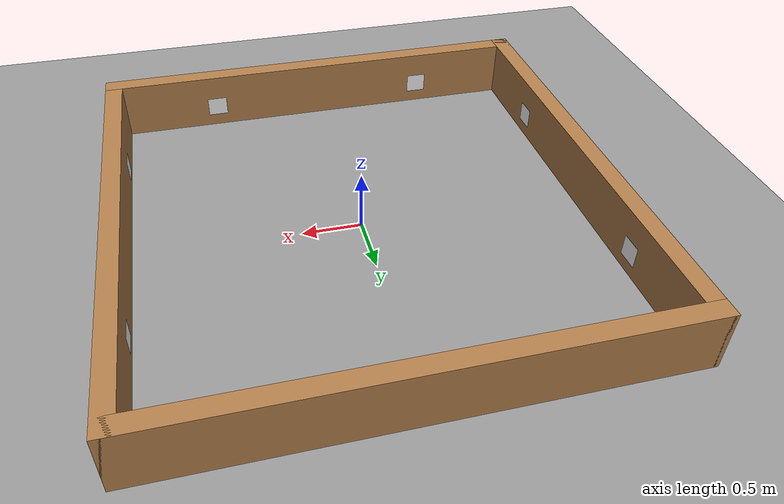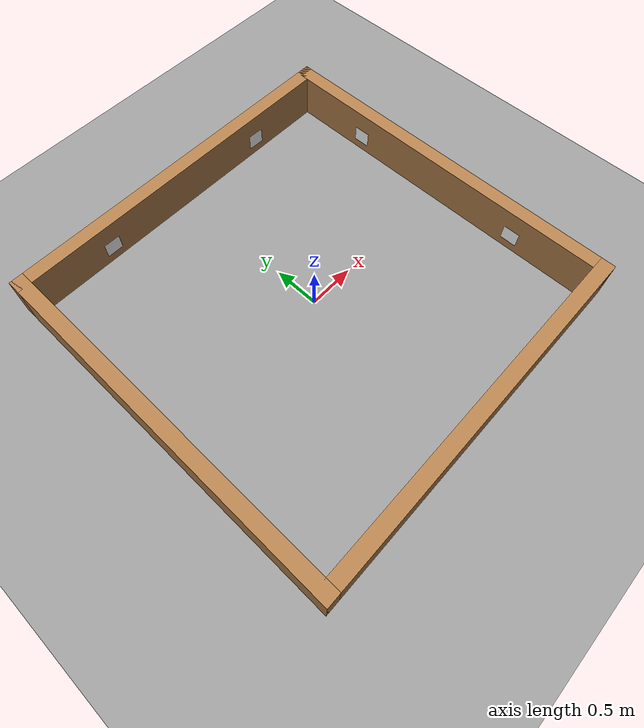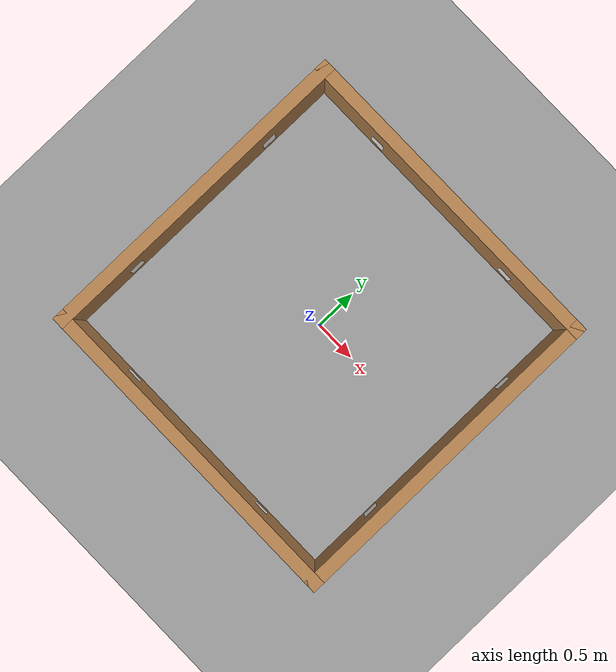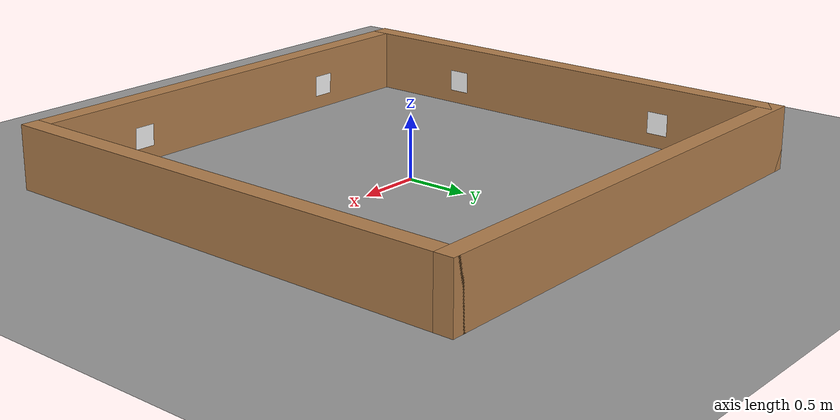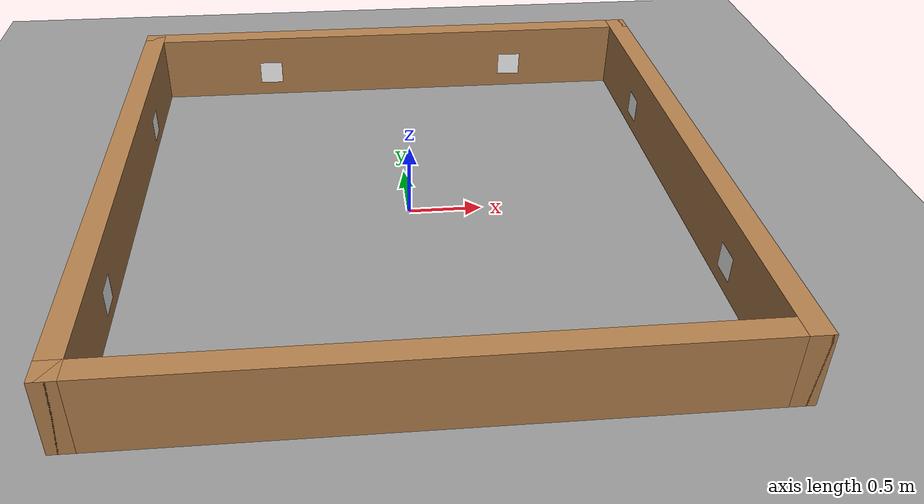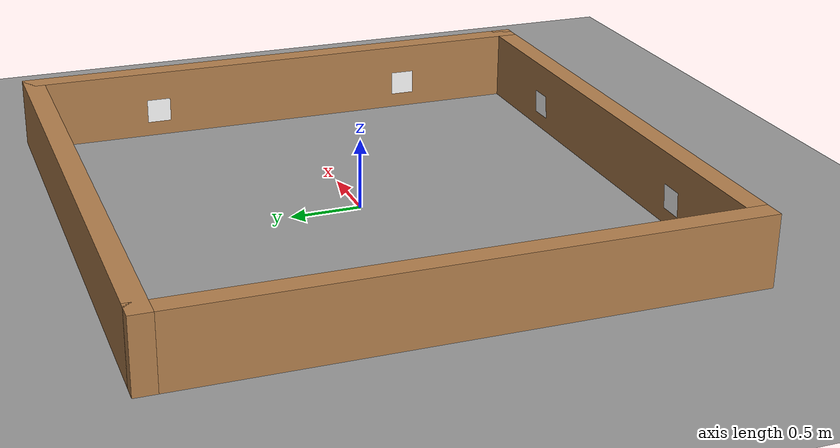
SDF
<sdf version="1.6">
 <world name="default">
  <light name="sun" type="directional">
   <pose>0 0 10 0 -0 0</pose>
   <diffuse>0.8 0.8 0.8 1</diffuse>
   <specular>0.2 0.2 0.2 1</specular>
   <attenuation>
    <range>1000</range>
    <constant>0.9</constant>
    <linear>0.01</linear>
    <quadratic>0.001</quadratic>
   </attenuation>
   <direction>0.5 0.1 -0.9</direction>
  </light>
  <scene><ambient>0.4 0.4 0.4 1</ambient><background>0.7 0.7 0.7 1</background><shadows>1</shadows></scene>
  <physics name="default_physics" default="0" type="ode">
   <max_step_size>0.01</max_step_size>
   <real_time_factor>1</real_time_factor>
   <real_time_update_rate>100</real_time_update_rate>
  </physics>
  <model name="ground_plane_0">
   <static>1</static>
   <link name="link">
    <collision name="collision">
     <geometry><plane><normal>0 0 1</normal><size>100 100</size></plane></geometry>
     <surface><friction><ode><mu>100</mu><mu2>50</mu2></ode></friction></surface>
    </collision>
    <visual name="visual">
     <cast_shadows>0</cast_shadows>
     <geometry><plane><normal>0 0 1</normal><size>100 100</size></plane></geometry>
     <material>
      <script><uri>file://media/materials/scripts/gazebo.material</uri><name>Gazebo/Grey</name></script>
     </material>
    </visual>
    <velocity_decay><linear>0</linear><angular>0</angular></velocity_decay>
   </link>
   <pose>0.497681 0 0 0 -0 0</pose>
  </model>
  <gravity>0 0 -9.8</gravity>
  <magnetic_field>6e-06 2.3e-05 -4.2e-05</magnetic_field>
  <atmosphere type="adiabatic"/>
  <spherical_coordinates>
   <surface_model>EARTH_WGS84</surface_model>
   <latitude_deg>0</latitude_deg>
   <longitude_deg>0</longitude_deg>
   <elevation>0</elevation>
   <heading_deg>0</heading_deg>
  </spherical_coordinates>
  <model name="turtlebot3_square">
   <link name="Wall_0">
    <collision name="Wall_0_Collision">
     <geometry><box><size>4 0.15 0.5</size></box></geometry>
     <pose>0 0 0.25 0 -0 0</pose>
    </collision>
    <visual name="Wall_0_Visual">
     <pose>0 0 0.25 0 -0 0</pose>
     <geometry><box><size>4 0.15 0.5</size></box></geometry>
     <material>
      <script><uri>file://media/materials/scripts/gazebo.material</uri><name>Gazebo/Wood</name></script>
      <ambient>1 1 1 1</ambient>
     </material>
    </visual>
    <pose>0 1.925 0 0 -0 0</pose>
   </link>
   <link name="Wall_2">
    <collision name="Wall_2_Collision">
     <geometry><box><size>4 0.15 0.5</size></box></geometry>
     <pose>0 0 0.25 0 -0 0</pose>
    </collision>
    <visual name="Wall_2_Visual">
     <pose>0 0 0.25 0 -0 0</pose>
     <geometry><box><size>4 0.15 0.5</size></box></geometry>
     <material>
      <script><uri>file://media/materials/scripts/gazebo.material</uri><name>Gazebo/Wood</name></script>
      <ambient>1 1 1 1</ambient>
     </material>
    </visual>
    <pose>-1.925 0 0 0 0 -1.5708</pose>
   </link>
   <link name="Wall_3">
    <collision name="Wall_3_Collision">
     <geometry><box><size>4 0.15 0.5</size></box></geometry>
     <pose>0 0 0.25 0 -0 0</pose>
    </collision>
    <visual name="Wall_3_Visual">
     <pose>0 0 0.25 0 -0 0</pose>
     <geometry><box><size>4 0.15 0.5</size></box></geometry>
     <material>
      <script><uri>file://media/materials/scripts/gazebo.material</uri><name>Gazebo/Wood</name></script>
      <ambient>1 1 1 1</ambient>
     </material>
    </visual>
    <pose>0 -1.925 0 0 -0 0</pose>
   </link>
   <link name="Wall_4">
    <collision name="Wall_4_Collision">
     <geometry><box><size>4 0.15 0.5</size></box></geometry>
     <pose>0 0 0.25 0 -0 0</pose>
    </collision>
    <visual name="Wall_4_Visual">
     <pose>0 0 0.25 0 -0 0</pose>
     <geometry><box><size>4 0.15 0.5</size></box></geometry>
     <material>
      <script><uri>file://media/materials/scripts/gazebo.material</uri><name>Gazebo/Wood</name></script>
      <ambient>1 1 1 1</ambient>
     </material>
    </visual>
    <pose>1.925 0 0 0 -0 1.5708</pose>
   </link>
   <static>1</static>
  </model>
  <model name="aruco_visual_marker_0">
   <link name="marker">
    <visual name="visual">
     <geometry><box><size>0.1778 0.1778 1e-05</size></box></geometry>
     <material>
      <script>
       <uri>model://aruco_visual_marker_0/materials/scripts</uri>
       <uri>model://aruco_visual_marker_0/materials/textures</uri>
       <name>ArucoVisualMarker0/Marker</name>
      </script>
      <ambient>1 1 1 1</ambient>
      <diffuse>1 1 1 1</diffuse>
      <specular>0 0 0 1</specular>
      <emissive>1 1 1 0</emissive>
      <shader type="vertex"><normal_map>__default__</normal_map></shader>
     </material>
    </visual>
    <collision name="collision"><geometry><box><size>0.1778 0.1778 1e-05</size></box></geometry></collision>
   </link>
   <link name="marker_pad">
    <pose frame="marker">0 0 -1e-05 0 -0 0</pose>
    <visual name="visual">
     <geometry><box><size>0.1778 0.1778 1e-05</size></box></geometry>
     <material>
      <lighting>1</lighting>
      <script><uri>file://media/materials/scripts/gazebo.material</uri><name>Gazebo/White</name></script>
      <ambient>0.3 0.3 0.3 1</ambient>
      <diffuse>0.7 0.7 0.7 1</diffuse>
      <specular>0.01 0.01 0.01 1</specular>
      <emissive>1 1 1 0</emissive>
      <shader type="vertex"><normal_map>__default__</normal_map></shader>
     </material>
    </visual>
    <collision name="collision"><geometry><box><size>0.1778 0.1778 1e-05</size></box></geometry></collision>
   </link>
   <joint name="marker_JOINT_marker_pad" type="revolute">
    <parent>marker</parent>
    <child>marker_pad</child>
    <axis>
     <xyz>0 0 1</xyz>
     <limit><upper>0</upper><lower>0</lower></limit>
     <use_parent_model_frame>0</use_parent_model_frame>
     <dynamics><spring_reference>0</spring_reference><spring_stiffness>0</spring_stiffness></dynamics>
    </axis>
   </joint>
   <static>1</static>
   <pose>1.84 -1 0.2 3.14159 -1.57079 3.14159</pose>
  </model>
  <model name="aruco_visual_marker_1">
   <link name="marker">
    <visual name="visual">
     <geometry><box><size>0.1778 0.1778 1e-05</size></box></geometry>
     <material>
      <script>
       <uri>model://aruco_visual_marker_1/materials/scripts</uri>
       <uri>model://aruco_visual_marker_1/materials/textures</uri>
       <name>ArucoVisualMarker1/Marker</name>
      </script>
      <ambient>1 1 1 1</ambient>
      <diffuse>1 1 1 1</diffuse>
      <specular>0 0 0 1</specular>
      <emissive>1 1 1 0</emissive>
      <shader type="vertex"><normal_map>__default__</normal_map></shader>
     </material>
    </visual>
    <collision name="collision"><geometry><box><size>0.1778 0.1778 1e-05</size></box></geometry></collision>
   </link>
   <link name="marker_pad">
    <pose frame="marker">0 0 -1e-05 0 -0 0</pose>
    <visual name="visual">
     <geometry><box><size>0.1778 0.1778 1e-05</size></box></geometry>
     <material>
      <lighting>1</lighting>
      <script><uri>file://media/materials/scripts/gazebo.material</uri><name>Gazebo/White</name></script>
      <ambient>0.3 0.3 0.3 1</ambient>
      <diffuse>0.7 0.7 0.7 1</diffuse>
      <specular>0.01 0.01 0.01 1</specular>
      <emissive>1 1 1 0</emissive>
      <shader type="vertex"><normal_map>__default__</normal_map></shader>
     </material>
    </visual>
    <collision name="collision"><geometry><box><size>0.1778 0.1778 1e-05</size></box></geometry></collision>
   </link>
   <joint name="marker_JOINT_marker_pad" type="revolute">
    <parent>marker</parent>
    <child>marker_pad</child>
    <axis>
     <xyz>0 0 1</xyz>
     <limit><upper>0</upper><lower>0</lower></limit>
     <use_parent_model_frame>0</use_parent_model_frame>
     <dynamics><spring_reference>0</spring_reference><spring_stiffness>0</spring_stiffness></dynamics>
    </axis>
   </joint>
   <static>1</static>
   <pose>1.84 1 0.2 3.14159 -1.57079 3.14159</pose>
  </model>
  <model name="aruco_visual_marker_2">
   <link name="marker">
    <visual name="visual">
     <geometry><box><size>0.1778 0.1778 1e-05</size></box></geometry>
     <material>
      <script>
       <uri>model://aruco_visual_marker_2/materials/scripts</uri>
       <uri>model://aruco_visual_marker_2/materials/textures</uri>
       <name>ArucoVisualMarker2/Marker</name>
      </script>
      <ambient>1 1 1 1</ambient>
      <diffuse>1 1 1 1</diffuse>
      <specular>0 0 0 1</specular>
      <emissive>1 1 1 0</emissive>
      <shader type="vertex"><normal_map>__default__</normal_map></shader>
     </material>
    </visual>
    <collision name="collision"><geometry><box><size>0.1778 0.1778 1e-05</size></box></geometry></collision>
   </link>
   <link name="marker_pad">
    <pose frame="marker">0 0 -1e-05 0 -0 0</pose>
    <visual name="visual">
     <geometry><box><size>0.1778 0.1778 1e-05</size></box></geometry>
     <material>
      <lighting>1</lighting>
      <script><uri>file://media/materials/scripts/gazebo.material</uri><name>Gazebo/White</name></script>
      <ambient>0.3 0.3 0.3 1</ambient>
      <diffuse>0.7 0.7 0.7 1</diffuse>
      <specular>0.01 0.01 0.01 1</specular>
      <emissive>1 1 1 0</emissive>
      <shader type="vertex"><normal_map>__default__</normal_map></shader>
     </material>
    </visual>
    <collision name="collision"><geometry><box><size>0.1778 0.1778 1e-05</size></box></geometry></collision>
   </link>
   <joint name="marker_JOINT_marker_pad" type="revolute">
    <parent>marker</parent>
    <child>marker_pad</child>
    <axis>
     <xyz>0 0 1</xyz>
     <limit><upper>0</upper><lower>0</lower></limit>
     <use_parent_model_frame>0</use_parent_model_frame>
     <dynamics><spring_reference>0</spring_reference><spring_stiffness>0</spring_stiffness></dynamics>
    </axis>
   </joint>
   <static>1</static>
   <pose>1 1.84 0.2 1.55523 -1.57079 -0.015565</pose>
  </model>
  <model name="aruco_visual_marker_3">
   <link name="marker">
    <visual name="visual">
     <geometry><box><size>0.1778 0.1778 1e-05</size></box></geometry>
     <material>
      <script>
       <uri>model://aruco_visual_marker_3/materials/scripts</uri>
       <uri>model://aruco_visual_marker_3/materials/textures</uri>
       <name>ArucoVisualMarker3/Marker</name>
      </script>
      <ambient>1 1 1 1</ambient>
      <diffuse>1 1 1 1</diffuse>
      <specular>0 0 0 1</specular>
      <emissive>1 1 1 0</emissive>
      <shader type="vertex"><normal_map>__default__</normal_map></shader>
     </material>
    </visual>
    <collision name="collision"><geometry><box><size>0.1778 0.1778 1e-05</size></box></geometry></collision>
   </link>
   <link name="marker_pad">
    <pose frame="marker">0 0 -1e-05 0 -0 0</pose>
    <visual name="visual">
     <geometry><box><size>0.1778 0.1778 1e-05</size></box></geometry>
     <material>
      <lighting>1</lighting>
      <script><uri>file://media/materials/scripts/gazebo.material</uri><name>Gazebo/White</name></script>
      <ambient>0.3 0.3 0.3 1</ambient>
      <diffuse>0.7 0.7 0.7 1</diffuse>
      <specular>0.01 0.01 0.01 1</specular>
      <emissive>1 1 1 0</emissive>
      <shader type="vertex"><normal_map>__default__</normal_map></shader>
     </material>
    </visual>
    <collision name="collision"><geometry><box><size>0.1778 0.1778 1e-05</size></box></geometry></collision>
   </link>
   <joint name="marker_JOINT_marker_pad" type="revolute">
    <parent>marker</parent>
    <child>marker_pad</child>
    <axis>
     <xyz>0 0 1</xyz>
     <limit><upper>0</upper><lower>0</lower></limit>
     <use_parent_model_frame>0</use_parent_model_frame>
     <dynamics><spring_reference>0</spring_reference><spring_stiffness>0</spring_stiffness></dynamics>
    </axis>
   </joint>
   <static>1</static>
   <pose>-1 1.84 0.2 1.93215 -1.56284 -0.363899</pose>
  </model>
  <model name="aruco_visual_marker_4">
   <link name="marker">
    <visual name="visual">
     <geometry><box><size>0.1778 0.1778 1e-05</size></box></geometry>
     <material>
      <script>
       <uri>model://aruco_visual_marker_4/materials/scripts</uri>
       <uri>model://aruco_visual_marker_4/materials/textures</uri>
       <name>ArucoVisualMarker4/Marker</name>
      </script>
      <ambient>1 1 1 1</ambient>
      <diffuse>1 1 1 1</diffuse>
      <specular>0 0 0 1</specular>
      <emissive>1 1 1 0</emissive>
      <shader type="vertex"><normal_map>__default__</normal_map></shader>
     </material>
    </visual>
    <collision name="collision"><geometry><box><size>0.1778 0.1778 1e-05</size></box></geometry></collision>
   </link>
   <link name="marker_pad">
    <pose frame="marker">0 0 -1e-05 0 -0 0</pose>
    <visual name="visual">
     <geometry><box><size>0.1778 0.1778 1e-05</size></box></geometry>
     <material>
      <lighting>1</lighting>
      <script><uri>file://media/materials/scripts/gazebo.material</uri><name>Gazebo/White</name></script>
      <ambient>0.3 0.3 0.3 1</ambient>
      <diffuse>0.7 0.7 0.7 1</diffuse>
      <specular>0.01 0.01 0.01 1</specular>
      <emissive>1 1 1 0</emissive>
      <shader type="vertex"><normal_map>__default__</normal_map></shader>
     </material>
    </visual>
    <collision name="collision"><geometry><box><size>0.1778 0.1778 1e-05</size></box></geometry></collision>
   </link>
   <joint name="marker_JOINT_marker_pad" type="revolute">
    <parent>marker</parent>
    <child>marker_pad</child>
    <axis>
     <xyz>0 0 1</xyz>
     <limit><upper>0</upper><lower>0</lower></limit>
     <use_parent_model_frame>0</use_parent_model_frame>
     <dynamics><spring_reference>0</spring_reference><spring_stiffness>0</spring_stiffness></dynamics>
    </axis>
   </joint>
   <static>1</static>
   <pose>-1.84 1 0.2 0.000102 -1.56335 -3.13313</pose>
  </model>
  <model name="aruco_visual_marker_5">
   <link name="marker">
    <visual name="visual">
     <geometry><box><size>0.1778 0.1778 1e-05</size></box></geometry>
     <material>
      <script>
       <uri>model://aruco_visual_marker_5/materials/scripts</uri>
       <uri>model://aruco_visual_marker_5/materials/textures</uri>
       <name>ArucoVisualMarker5/Marker</name>
      </script>
      <ambient>1 1 1 1</ambient>
      <diffuse>1 1 1 1</diffuse>
      <specular>0 0 0 1</specular>
      <emissive>1 1 1 0</emissive>
      <shader type="vertex"><normal_map>__default__</normal_map></shader>
     </material>
    </visual>
    <collision name="collision"><geometry><box><size>0.1778 0.1778 1e-05</size></box></geometry></collision>
   </link>
   <link name="marker_pad">
    <pose frame="marker">0 0 -1e-05 0 -0 0</pose>
    <visual name="visual">
     <geometry><box><size>0.1778 0.1778 1e-05</size></box></geometry>
     <material>
      <lighting>1</lighting>
      <script><uri>file://media/materials/scripts/gazebo.material</uri><name>Gazebo/White</name></script>
      <ambient>0.3 0.3 0.3 1</ambient>
      <diffuse>0.7 0.7 0.7 1</diffuse>
      <specular>0.01 0.01 0.01 1</specular>
      <emissive>1 1 1 0</emissive>
      <shader type="vertex"><normal_map>__default__</normal_map></shader>
     </material>
    </visual>
    <collision name="collision"><geometry><box><size>0.1778 0.1778 1e-05</size></box></geometry></collision>
   </link>
   <joint name="marker_JOINT_marker_pad" type="revolute">
    <parent>marker</parent>
    <child>marker_pad</child>
    <axis>
     <xyz>0 0 1</xyz>
     <limit><upper>0</upper><lower>0</lower></limit>
     <use_parent_model_frame>0</use_parent_model_frame>
     <dynamics><spring_reference>0</spring_reference><spring_stiffness>0</spring_stiffness></dynamics>
    </axis>
   </joint>
   <static>1</static>
   <pose>-1.84 -1 0.2 -3.14151 -1.56466 0.009305</pose>
  </model>
  <model name="aruco_visual_marker_6">
   <link name="marker">
    <visual name="visual">
     <geometry><box><size>0.1778 0.1778 1e-05</size></box></geometry>
     <material>
      <script>
       <uri>model://aruco_visual_marker_6/materials/scripts</uri>
       <uri>model://aruco_visual_marker_6/materials/textures</uri>
       <name>ArucoVisualMarker6/Marker</name>
      </script>
      <ambient>1 1 1 1</ambient>
      <diffuse>1 1 1 1</diffuse>
      <specular>0 0 0 1</specular>
      <emissive>1 1 1 0</emissive>
      <shader type="vertex"><normal_map>__default__</normal_map></shader>
     </material>
    </visual>
    <collision name="collision"><geometry><box><size>0.1778 0.1778 1e-05</size></box></geometry></collision>
   </link>
   <link name="marker_pad">
    <pose frame="marker">0 0 -1e-05 0 -0 0</pose>
    <visual name="visual">
     <geometry><box><size>0.1778 0.1778 1e-05</size></box></geometry>
     <material>
      <lighting>1</lighting>
      <script><uri>file://media/materials/scripts/gazebo.material</uri><name>Gazebo/White</name></script>
      <ambient>0.3 0.3 0.3 1</ambient>
      <diffuse>0.7 0.7 0.7 1</diffuse>
      <specular>0.01 0.01 0.01 1</specular>
      <emissive>1 1 1 0</emissive>
      <shader type="vertex"><normal_map>__default__</normal_map></shader>
     </material>
    </visual>
    <collision name="collision"><geometry><box><size>0.1778 0.1778 1e-05</size></box></geometry></collision>
   </link>
   <joint name="marker_JOINT_marker_pad" type="revolute">
    <parent>marker</parent>
    <child>marker_pad</child>
    <axis>
     <xyz>0 0 1</xyz>
     <limit><upper>0</upper><lower>0</lower></limit>
     <use_parent_model_frame>0</use_parent_model_frame>
     <dynamics><spring_reference>0</spring_reference><spring_stiffness>0</spring_stiffness></dynamics>
    </axis>
   </joint>
   <static>1</static>
   <pose>-1 -1.84 0.2 3.14158 -1.51777 1.5601</pose>
  </model>
  <model name="aruco_visual_marker_7">
   <link name="marker">
    <visual name="visual">
     <geometry><box><size>0.1778 0.1778 1e-05</size></box></geometry>
     <material>
      <script>
       <uri>model://aruco_visual_marker_7/materials/scripts</uri>
       <uri>model://aruco_visual_marker_7/materials/textures</uri>
       <name>ArucoVisualMarker7/Marker</name>
      </script>
      <ambient>1 1 1 1</ambient>
      <diffuse>1 1 1 1</diffuse>
      <specular>0 0 0 1</specular>
      <emissive>1 1 1 0</emissive>
      <shader type="vertex"><normal_map>__default__</normal_map></shader>
     </material>
    </visual>
    <collision name="collision"><geometry><box><size>0.1778 0.1778 1e-05</size></box></geometry></collision>
   </link>
   <link name="marker_pad">
    <pose frame="marker">0 0 -1e-05 0 -0 0</pose>
    <visual name="visual">
     <geometry><box><size>0.1778 0.1778 1e-05</size></box></geometry>
     <material>
      <lighting>1</lighting>
      <script><uri>file://media/materials/scripts/gazebo.material</uri><name>Gazebo/White</name></script>
      <ambient>0.3 0.3 0.3 1</ambient>
      <diffuse>0.7 0.7 0.7 1</diffuse>
      <specular>0.01 0.01 0.01 1</specular>
      <emissive>1 1 1 0</emissive>
      <shader type="vertex"><normal_map>__default__</normal_map></shader>
     </material>
    </visual>
    <collision name="collision"><geometry><box><size>0.1778 0.1778 1e-05</size></box></geometry></collision>
   </link>
   <joint name="marker_JOINT_marker_pad" type="revolute">
    <parent>marker</parent>
    <child>marker_pad</child>
    <axis>
     <xyz>0 0 1</xyz>
     <limit><upper>0</upper><lower>0</lower></limit>
     <use_parent_model_frame>0</use_parent_model_frame>
     <dynamics><spring_reference>0</spring_reference><spring_stiffness>0</spring_stiffness></dynamics>
    </axis>
   </joint>
   <static>1</static>
   <pose>1 -1.84 0.2 3.14158 -1.50538 1.57528</pose>
  </model>
 </world>
</sdf>
